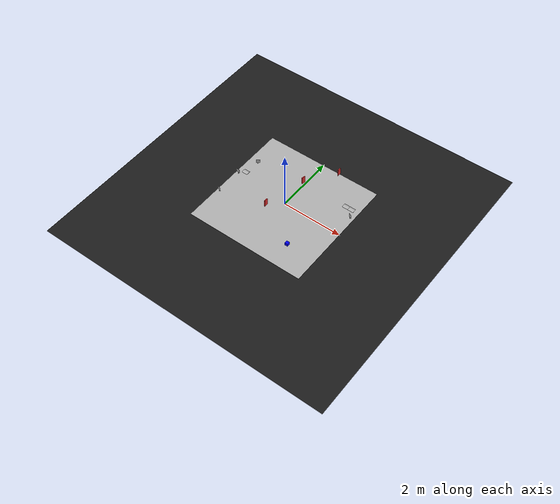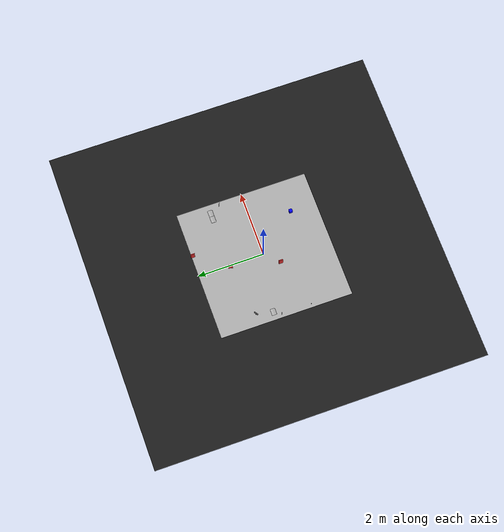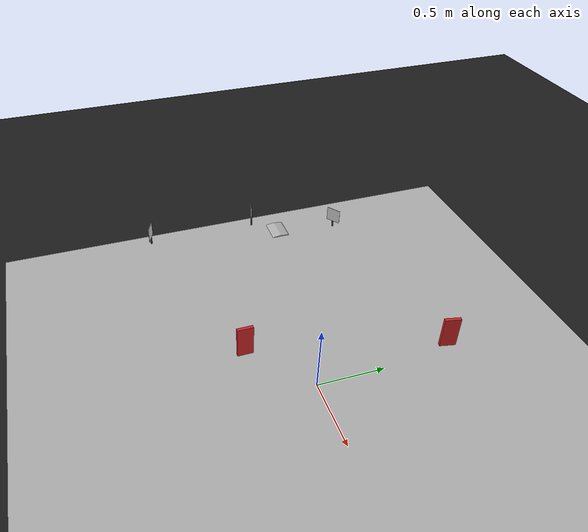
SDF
<sdf version="1.7">
 <world name="default">
  <scene>
   <ambient>0.8 0.8 0.8 1</ambient>
   <shadows>0</shadows>
   <grid>0</grid>
   <background>0.7 0.7 0.7 1</background>
  </scene>
  <include>
   <uri>model://turtlebot3_autorace_2020/limit_end</uri>
   <pose>-1.892620 -0.783866 -0.039528 0 0 2.751300</pose>
  </include>
  <include>
   <uri>model://turtlebot3_autorace_2020/speed_bump_sign</uri>
   <name>speed_bump_sign_1</name>
   <pose>1.885350 0.715183 -0.045065 0 0 2.666610</pose>
  </include>
  <include>
   <uri>model://turtlebot3_autorace_2020/speed_bump_sign</uri>
   <name>speed_bump_sign_2</name>
   <pose>-1.667100 0.824420 -0.045065 0 0 -2.517920</pose>
  </include>
  <include>
   <uri>model://turtlebot3_autorace_2020/speed_limit_30</uri>
   <pose>-1.896800 0.127247 -0.022942 0 0 2.940789</pose>
  </include>
  <include><uri>model://moving_box</uri><pose>1.0 -1.2 0.05 0 0 0</pose></include>
  <model name="course">
   <static>1</static>
   <link name="course_link">
    <collision name="course_collision">
     <geometry><plane><normal>0 0 1</normal><size>4 4</size></plane></geometry>
     <surface><friction><ode><mu>100</mu><mu2>50</mu2></ode></friction></surface>
    </collision>
    <visual name="course_visual">
     <cast_shadows>0</cast_shadows>
     <geometry><plane><normal>0 0 1</normal><size>4 4</size></plane></geometry>
     <material>
      <script>
       <uri>model://turtlebot3_autorace_2020/course/materials/scripts</uri>
       <uri>model://turtlebot3_autorace_2020/course/materials/textures</uri>
       <name>course</name>
      </script>
     </material>
    </visual>
   </link>
   <pose>0 0 0 0 0 -3.14</pose>
  </model>
  <light name="sun" type="directional">
   <pose>0 0 10 0 -0 0</pose>
   <diffuse>0.8 0.8 0.8 1</diffuse>
   <specular>0.1 0.1 0.1 1</specular>
   <attenuation>
    <range>1000</range>
    <constant>0.9</constant>
    <linear>0.01</linear>
    <quadratic>0.001</quadratic>
   </attenuation>
   <direction>-0.5 0.5 -1</direction>
   <spot><inner_angle>0</inner_angle><outer_angle>0</outer_angle><falloff>0</falloff></spot>
  </light>
  <model name="ground2">
   <pose>0 0 -0.1 0 -0 0</pose>
   <static>1</static>
   <link name="ground">
    <collision name="ground_coll"><geometry><box><size>8 8 0.01</size></box></geometry></collision>
    <visual name="ground_vis">
     <geometry><box><size>10 10 0.01</size></box></geometry>
     <material>
      <script><uri>file://media/materials/scripts/gazebo.material</uri><name>Gazebo/FlatBlack</name></script>
     </material>
    </visual>
   </link>
  </model>
  <gravity>0 0 -9.8</gravity>
  <magnetic_field>6e-06 2.3e-05 -4.2e-05</magnetic_field>
  <atmosphere type="adiabatic"/>
  <physics name="default_physics" default="0" type="ode">
   <max_step_size>0.001</max_step_size>
   <real_time_factor>1</real_time_factor>
   <real_time_update_rate>1000</real_time_update_rate>
  </physics>
  <spherical_coordinates>
   <surface_model>EARTH_WGS84</surface_model>
   <latitude_deg>0</latitude_deg>
   <longitude_deg>0</longitude_deg>
   <elevation>0</elevation>
   <heading_deg>0</heading_deg>
  </spherical_coordinates>
  <light name="user_point_light_1" type="point">
   <pose>-1.64815 0.604519 1 0 -0 0</pose>
   <diffuse>0.5 0.5 0.5 1</diffuse>
   <specular>0.1 0.1 0.1 1</specular>
   <attenuation>
    <range>20</range>
    <constant>0.5</constant>
    <linear>0.01</linear>
    <quadratic>0.001</quadratic>
   </attenuation>
   <cast_shadows>0</cast_shadows>
   <direction>0 0 -1</direction>
   <spot><inner_angle>0</inner_angle><outer_angle>0</outer_angle><falloff>0</falloff></spot>
  </light>
  <light name="user_point_light_2" type="point">
   <pose>1.63854 1.69565 1 0 -0 0</pose>
   <diffuse>0.5 0.5 0.5 1</diffuse>
   <specular>0.1 0.1 0.1 1</specular>
   <attenuation>
    <range>20</range>
    <constant>0.5</constant>
    <linear>0.01</linear>
    <quadratic>0.001</quadratic>
   </attenuation>
   <cast_shadows>0</cast_shadows>
   <direction>0 0 -1</direction>
   <spot><inner_angle>0</inner_angle><outer_angle>0</outer_angle><falloff>0</falloff></spot>
  </light>
  <light name="user_point_light_3" type="point">
   <pose>0.42 -3.31 1 0 -0 0</pose>
   <diffuse>0.5 0.5 0.5 1</diffuse>
   <specular>0.1 0.1 0.1 1</specular>
   <attenuation>
    <range>20</range>
    <constant>0.5</constant>
    <linear>0.01</linear>
    <quadratic>0.001</quadratic>
   </attenuation>
   <cast_shadows>0</cast_shadows>
   <direction>0 0 -1</direction>
   <spot><inner_angle>0</inner_angle><outer_angle>0</outer_angle><falloff>0</falloff></spot>
  </light>
  <audio><device>default</device></audio>
  <model name="traffic_light_clone">
   <link name="traffic_light">
    <collision name="collision"><geometry><box><size>0.12 0.025 0.25</size></box></geometry></collision>
    <visual name="visual">
     <geometry><box><size>0.12 0.025 0.25</size></box></geometry>
     <material>
      <script>
       <uri>model://turtlebot3_autorace_2020/traffic_light/materials/scripts</uri>
       <uri>model://turtlebot3_autorace_2020/traffic_light/materials/textures</uri>
       <name>traffic_light_red</name>
      </script>
     </material>
    </visual>
   </link>
   <plugin name="traffic_light_plugin" filename="libtraffic_light_plugin.so"/>
   <static>1</static>
   <pose>0.606877 1.96486 0.128811 0 0 -1.57</pose>
  </model>
  <model name="traffic_light_clone_clone">
   <link name="traffic_light">
    <collision name="collision"><geometry><box><size>0.12 0.025 0.25</size></box></geometry></collision>
    <visual name="visual">
     <geometry><box><size>0.12 0.025 0.25</size></box></geometry>
     <material>
      <script>
       <uri>model://turtlebot3_autorace_2020/traffic_light/materials/scripts</uri>
       <uri>model://turtlebot3_autorace_2020/traffic_light/materials/textures</uri>
       <name>traffic_light_red</name>
      </script>
     </material>
    </visual>
   </link>
   <plugin name="traffic_light_plugin" filename="libtraffic_light_plugin.so"/>
   <static>1</static>
   <pose>-0.069498 1.035524 0.128811 0 0 1.372300</pose>
  </model>
  <model name="traffic_light_clone_clone_clone">
   <link name="traffic_light">
    <collision name="collision"><geometry><box><size>0.12 0.025 0.25</size></box></geometry></collision>
    <visual name="visual">
     <geometry><box><size>0.12 0.025 0.25</size></box></geometry>
     <material>
      <script>
       <uri>model://turtlebot3_autorace_2020/traffic_light/materials/scripts</uri>
       <uri>model://turtlebot3_autorace_2020/traffic_light/materials/textures</uri>
       <name>traffic_light_red</name>
      </script>
     </material>
    </visual>
   </link>
   <plugin name="traffic_light_plugin" filename="libtraffic_light_plugin.so"/>
   <static>1</static>
   <pose>-0.419999 -0.379455 0.128811 0 0 -1.570000</pose>
  </model>
  <model name="speed_bump">
   <static>1</static>
   <link name="link">
    <pose>0 0 0.02 0 -0 0</pose>
    <visual name="visual">
     <geometry><cylinder><radius>0.25</radius><length>0.2</length></cylinder></geometry>
     <material>
      <script>
       <uri>model://speed_bump/materials/scripts</uri>
       <uri>model://speed_bump/materials/textures</uri>
       <name>SpeedBumpTexture</name>
      </script>
     </material>
    </visual>
    <collision name="collision">
     <geometry><cylinder><radius>0.25</radius><length>0.2</length></cylinder></geometry>
    </collision>
   </link>
   <pose>-1.77221 0.328005 -0.235562 0 1.56844 0</pose>
  </model>
  <model name="speed_bump_clone">
   <static>1</static>
   <link name="link">
    <pose>0 0 0.02 0 -0 0</pose>
    <visual name="visual">
     <geometry><cylinder><radius>0.25</radius><length>0.2</length></cylinder></geometry>
     <material>
      <script>
       <uri>model://speed_bump/materials/scripts</uri>
       <uri>model://speed_bump/materials/textures</uri>
       <name>SpeedBumpTexture</name>
      </script>
     </material>
    </visual>
    <collision name="collision">
     <geometry><cylinder><radius>0.25</radius><length>0.2</length></cylinder></geometry>
    </collision>
   </link>
   <pose>1.71033 1.03021 -0.235625 0 1.56844 0</pose>
  </model>
  <model name="speed_bump_clone_0">
   <static>1</static>
   <link name="link">
    <pose>0 0 0.02 0 -0 0</pose>
    <visual name="visual">
     <geometry><cylinder><radius>0.25</radius><length>0.2</length></cylinder></geometry>
     <material>
      <script>
       <uri>model://speed_bump/materials/scripts</uri>
       <uri>model://speed_bump/materials/textures</uri>
       <name>SpeedBumpTexture</name>
      </script>
     </material>
    </visual>
    <collision name="collision">
     <geometry><cylinder><radius>0.25</radius><length>0.2</length></cylinder></geometry>
    </collision>
   </link>
   <pose>1.51133 1.03122 -0.235562 0 1.56844 0</pose>
  </model>
 </world>
</sdf>

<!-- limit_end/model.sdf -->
<sdf version="1.6">
  <model name="limit_end">
    <static>true</static>

    <link name="sign_link">
      <!-- 기둥 -->
      <visual name="pole_visual">
        <pose>0 0 0.05 0 0 0</pose>
        <geometry>
          <cylinder>
            <radius>0.0075</radius>
            <length>0.1</length>
          </cylinder>
        </geometry>
        <material>
          <ambient>0.2 0.2 0.2 1</ambient>
          <diffuse>0.2 0.2 0.2 1</diffuse>
        </material>
      </visual>

      <!-- 표지판 본체 -->
      <visual name="sign_visual">
        <pose>0 0 0.1625 0 0 0</pose>
        <geometry>
          <box>
            <size>0.125 0.0025 0.125</size>
          </box>
        </geometry>
        <material>
          <script>
            <uri>model://limit_end/materials/scripts</uri>
            <uri>model://limit_end/materials/textures</uri>
            <name>Gazebo/limit_end</name>
          </script>
        </material>
      </visual>
    </link>
  </model>
</sdf>

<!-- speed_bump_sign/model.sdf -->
<sdf version="1.6">
  <model name="speed_bump_sign">
    <static>true</static>

    <link name="sign_link">
      <!-- 기둥 -->
      <visual name="pole_visual">
        <pose>0 0 0.05 0 0 0</pose>
        <geometry>
          <cylinder>
            <radius>0.0075</radius>
            <length>0.1</length>
          </cylinder>
        </geometry>
        <material>
          <ambient>0.2 0.2 0.2 1</ambient>
          <diffuse>0.2 0.2 0.2 1</diffuse>
        </material>
      </visual>

      <!-- 표지판 본체 -->
      <visual name="sign_visual">
        <pose>0 0 0.1625 0 0 0</pose>
        <geometry>
          <box>
            <size>0.125 0.0025 0.125</size>
          </box>
        </geometry>
        <material>
          <script>
            <uri>model://speed_bump_sign/materials/scripts</uri>
            <uri>model://speed_bump_sign/materials/textures</uri>
            <name>Gazebo/speed_bump_sign</name>
          </script>
        </material>
      </visual>
    </link>
  </model>
</sdf>

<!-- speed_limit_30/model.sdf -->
<sdf version="1.6">
  <model name="speed_limit_30">
    <static>true</static>

    <link name="sign_link">
      <!-- 기둥 -->
      <visual name="pole_visual">
        <pose>0 0 0.05 0 0 0</pose>
        <geometry>
          <cylinder>
            <radius>0.0075</radius>
            <length>0.1</length>
          </cylinder>
        </geometry>
        <material>
          <ambient>0.2 0.2 0.2 1</ambient>
          <diffuse>0.2 0.2 0.2 1</diffuse>
        </material>
      </visual>

      <!-- 표지판 본체 -->
      <visual name="sign_visual">
        <pose>0 0 0.1625 0 0 0</pose>
        <geometry>
          <box>
            <size>0.125 0.0025 0.125</size>
          </box>
        </geometry>
        <material>
          <script>
            <uri>model://speed_limit_30/materials/scripts</uri>
            <uri>model://speed_limit_30/materials/textures</uri>
            <name>Gazebo/speed_limit_30</name>
          </script>
        </material>
      </visual>
    </link>
  </model>
</sdf>

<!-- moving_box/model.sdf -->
<sdf version="1.6">
  <model name="moving_box">
    <static>false</static>

    <link name="link">
      <inertial>
        <mass>1.0</mass>
        <inertia>
          <ixx>0.01</ixx>
          <iyy>0.01</iyy>
          <izz>0.01</izz>
        </inertia>
      </inertial>
      <gravity>false</gravity>
      <collision name="collision">
        <geometry>
          <box>
            <size>0.1 0.1 0.1</size>
          </box>
        </geometry>
        <surface>
          <friction>
            <ode>
              <mu>100</mu>           <!-- 마찰 계수 -->
              <mu2>100</mu2>         <!-- 마찰 계수 -->
            </ode>
          </friction>
        </surface>
      </collision>

      <visual name="visual">
        <geometry>
          <box>
            <size>0.1 0.1 0.1</size>
          </box>
        </geometry>
        <material>
          <ambient>0 0 1 1</ambient>
          <diffuse>0 0 1 1</diffuse>
        </material>
      </visual>
    </link>

    <!-- 여기 플러그인 붙이기 -->
    <plugin name="move_box_plugin" filename="libmove_box_plugin.so"/>
  </model>
</sdf>
